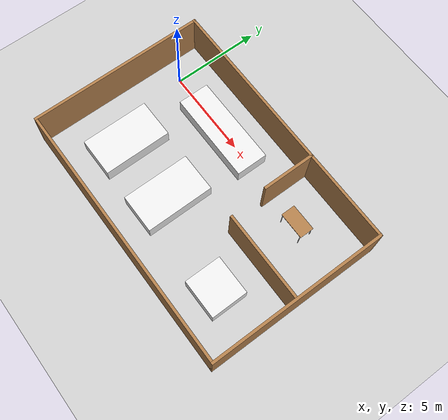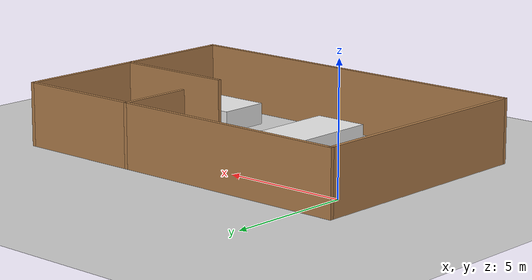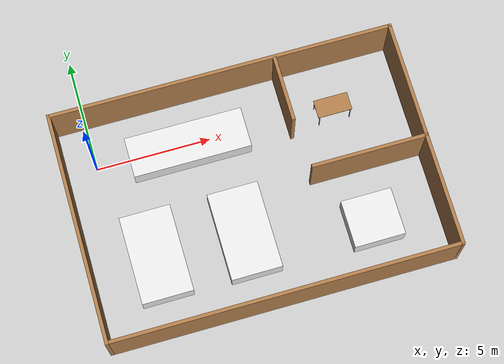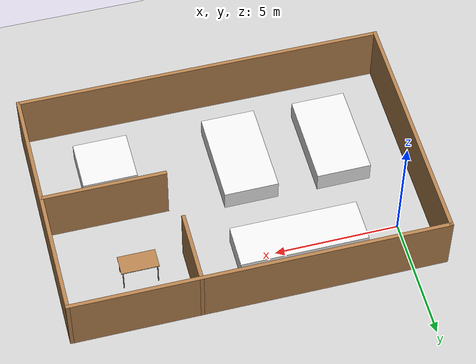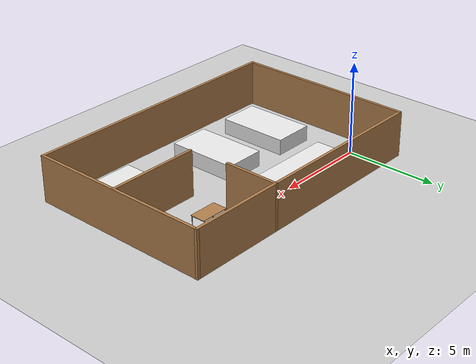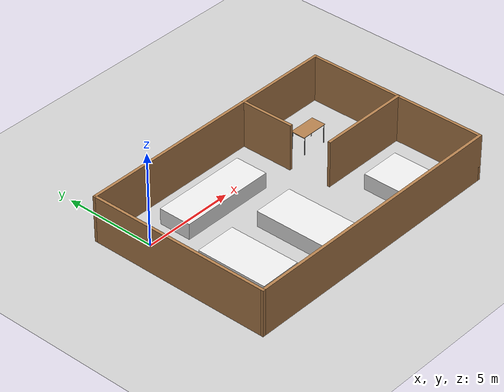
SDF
<sdf version="1.7">
 <world name="default">
  <light name="sun" type="directional">
   <pose>0 0 10 0 -0 0</pose>
   <diffuse>0.8 0.8 0.8 1</diffuse>
   <specular>0.2 0.2 0.2 1</specular>
   <attenuation>
    <range>1000</range>
    <constant>0.9</constant>
    <linear>0.01</linear>
    <quadratic>0.001</quadratic>
   </attenuation>
   <direction>-0.5 0.1 -0.9</direction>
   <spot><inner_angle>0</inner_angle><outer_angle>0</outer_angle><falloff>0</falloff></spot>
  </light>
  <model name="ground_plane">
   <static>1</static>
   <link name="link">
    <collision name="collision">
     <geometry><plane><normal>0 0 1</normal><size>100 100</size></plane></geometry>
     <surface>
      <contact><collide_bitmask>65535</collide_bitmask></contact>
      <friction><ode><mu>100</mu><mu2>50</mu2></ode></friction>
     </surface>
    </collision>
    <visual name="visual">
     <cast_shadows>0</cast_shadows>
     <geometry><plane><normal>0 0 1</normal><size>100 100</size></plane></geometry>
     <material>
      <script><uri>file://media/materials/scripts/gazebo.material</uri><name>Gazebo/Grey</name></script>
     </material>
    </visual>
   </link>
  </model>
  <gravity>0 0 -9.8</gravity>
  <magnetic_field>6e-06 2.3e-05 -4.2e-05</magnetic_field>
  <atmosphere type="adiabatic"/>
  <physics type="ode">
   <max_step_size>0.001</max_step_size>
   <real_time_factor>1</real_time_factor>
   <real_time_update_rate>1000</real_time_update_rate>
  </physics>
  <scene><ambient>0.4 0.4 0.4 1</ambient><background>0.7 0.7 0.7 1</background><shadows>1</shadows></scene>
  <spherical_coordinates>
   <surface_model>EARTH_WGS84</surface_model>
   <latitude_deg>0</latitude_deg>
   <longitude_deg>0</longitude_deg>
   <elevation>0</elevation>
   <heading_deg>0</heading_deg>
  </spherical_coordinates>
  <model name="new_world">
   <pose>8.75403 -2.94266 0 0 -0 0</pose>
   <link name="Wall_12">
    <collision name="Wall_12_Collision">
     <geometry><box><size>3 0.15 2.5</size></box></geometry>
     <pose>0 0 1.25 0 -0 0</pose>
    </collision>
    <visual name="Wall_12_Visual">
     <pose>0 0 1.25 0 -0 0</pose>
     <geometry><box><size>3 0.15 2.5</size></box></geometry>
     <material>
      <script><uri>file://media/materials/scripts/gazebo.material</uri><name>Gazebo/Wood</name></script>
      <ambient>1 1 1 1</ambient>
     </material>
     <meta><layer>0</layer></meta>
    </visual>
    <pose>-0.324419 3.5 0 0 -0 -1.5708</pose>
   </link>
   <link name="Wall_3">
    <collision name="Wall_3_Collision">
     <geometry><box><size>10 0.15 2.5</size></box></geometry>
     <pose>0 0 1.25 0 -0 0</pose>
    </collision>
    <visual name="Wall_3_Visual">
     <pose>0 0 1.25 0 -0 0</pose>
     <geometry><box><size>10 0.15 2.5</size></box></geometry>
     <material>
      <script><uri>file://media/materials/scripts/gazebo.material</uri><name>Gazebo/Wood</name></script>
      <ambient>1 1 1 1</ambient>
     </material>
     <meta><layer>0</layer></meta>
    </visual>
    <pose>-10.0855 0 0 0 -0 -1.5708</pose>
   </link>
   <link name="Wall_4">
    <collision name="Wall_4_Collision">
     <geometry><box><size>15 0.15 2.5</size></box></geometry>
     <pose>0 0 1.25 0 -0 0</pose>
    </collision>
    <visual name="Wall_4_Visual">
     <pose>0 0 1.25 0 -0 0</pose>
     <geometry><box><size>15 0.15 2.5</size></box></geometry>
     <material>
      <script><uri>file://media/materials/scripts/gazebo.material</uri><name>Gazebo/Wood</name></script>
      <ambient>1 1 1 1</ambient>
     </material>
     <meta><layer>0</layer></meta>
    </visual>
    <pose>-2.66053 -4.925 0 0 -0 0</pose>
   </link>
   <link name="Wall_5">
    <collision name="Wall_5_Collision">
     <geometry><box><size>10 0.15 2.5</size></box></geometry>
     <pose>0 0 1.25 0 -0 0</pose>
    </collision>
    <visual name="Wall_5_Visual">
     <pose>0 0 1.25 0 -0 0</pose>
     <geometry><box><size>10 0.15 2.5</size></box></geometry>
     <material>
      <script><uri>file://media/materials/scripts/gazebo.material</uri><name>Gazebo/Wood</name></script>
      <ambient>1 1 1 1</ambient>
     </material>
     <meta><layer>0</layer></meta>
    </visual>
    <pose>4.76447 0 0 0 -0 1.5708</pose>
   </link>
   <link name="Wall_6">
    <collision name="Wall_6_Collision">
     <geometry><box><size>15 0.15 2.5</size></box></geometry>
     <pose>0 0 1.25 0 -0 0</pose>
    </collision>
    <visual name="Wall_6_Visual">
     <pose>0 0 1.25 0 -0 0</pose>
     <geometry><box><size>15 0.15 2.5</size></box></geometry>
     <material>
      <script><uri>file://media/materials/scripts/gazebo.material</uri><name>Gazebo/Wood</name></script>
      <ambient>1 1 1 1</ambient>
     </material>
     <meta><layer>0</layer></meta>
    </visual>
    <pose>-2.66053 4.925 0 0 -0 3.14159</pose>
   </link>
   <link name="Wall_9">
    <collision name="Wall_9_Collision">
     <geometry><box><size>5 0.15 2.5</size></box></geometry>
     <pose>0 0 1.25 0 -0 0</pose>
    </collision>
    <visual name="Wall_9_Visual">
     <pose>0 0 1.25 0 -0 0</pose>
     <geometry><box><size>5 0.15 2.5</size></box></geometry>
     <material>
      <script><uri>file://media/materials/scripts/gazebo.material</uri><name>Gazebo/Wood</name></script>
      <ambient>1 1 1 1</ambient>
     </material>
     <meta><layer>0</layer></meta>
    </visual>
    <pose>2.31618 -0.140603 0 0 -0 3.14159</pose>
   </link>
   <static>1</static>
  </model>
  <model name="table">
   <static>1</static>
   <link name="link">
    <collision name="surface">
     <pose>0 0 1 0 -0 0</pose>
     <geometry><box><size>1.5 0.8 0.03</size></box></geometry>
     <surface><friction><ode><mu>0.6</mu><mu2>0.6</mu2></ode></friction></surface>
    </collision>
    <visual name="visual1">
     <pose>0 0 1 0 -0 0</pose>
     <geometry><box><size>1.5 0.8 0.03</size></box></geometry>
     <material>
      <script><uri>file://media/materials/scripts/gazebo.material</uri><name>Gazebo/Wood</name></script>
     </material>
    </visual>
    <collision name="front_left_leg">
     <pose>0.68 0.38 0.5 0 -0 0</pose>
     <geometry><cylinder><radius>0.02</radius><length>1</length></cylinder></geometry>
    </collision>
    <visual name="front_left_leg">
     <pose>0.68 0.38 0.5 0 -0 0</pose>
     <geometry><cylinder><radius>0.02</radius><length>1</length></cylinder></geometry>
     <material>
      <script><uri>file://media/materials/scripts/gazebo.material</uri><name>Gazebo/Grey</name></script>
     </material>
    </visual>
    <collision name="front_right_leg">
     <pose>0.68 -0.38 0.5 0 -0 0</pose>
     <geometry><cylinder><radius>0.02</radius><length>1</length></cylinder></geometry>
    </collision>
    <visual name="front_right_leg">
     <pose>0.68 -0.38 0.5 0 -0 0</pose>
     <geometry><cylinder><radius>0.02</radius><length>1</length></cylinder></geometry>
     <material>
      <script><uri>file://media/materials/scripts/gazebo.material</uri><name>Gazebo/Grey</name></script>
     </material>
    </visual>
    <collision name="back_right_leg">
     <pose>-0.68 -0.38 0.5 0 -0 0</pose>
     <geometry><cylinder><radius>0.02</radius><length>1</length></cylinder></geometry>
    </collision>
    <visual name="back_right_leg">
     <pose>-0.68 -0.38 0.5 0 -0 0</pose>
     <geometry><cylinder><radius>0.02</radius><length>1</length></cylinder></geometry>
     <material>
      <script><uri>file://media/materials/scripts/gazebo.material</uri><name>Gazebo/Grey</name></script>
     </material>
    </visual>
    <collision name="back_left_leg">
     <pose>-0.68 0.38 0.5 0 -0 0</pose>
     <geometry><cylinder><radius>0.02</radius><length>1</length></cylinder></geometry>
    </collision>
    <visual name="back_left_leg">
     <pose>-0.68 0.38 0.5 0 -0 0</pose>
     <geometry><cylinder><radius>0.02</radius><length>1</length></cylinder></geometry>
     <material>
      <script><uri>file://media/materials/scripts/gazebo.material</uri><name>Gazebo/Grey</name></script>
     </material>
    </visual>
   </link>
   <pose>10.3968 -0.283021 0 0 -0 0</pose>
  </model>
  <model name="unit_box">
   <pose>4.01871 -0.135677 0.426479 2e-06 -0 -1.6e-05</pose>
   <link name="link">
    <inertial>
     <mass>1</mass>
     <inertia>
      <ixx>0.166667</ixx>
      <ixy>0</ixy>
      <ixz>0</ixz>
      <iyy>0.166667</iyy>
      <iyz>0</iyz>
      <izz>0.166667</izz>
     </inertia>
    </inertial>
    <collision name="collision"><geometry><box><size>5.14722 1.77178 0.852957</size></box></geometry></collision>
    <visual name="visual">
     <geometry><box><size>5.14722 1.77178 0.852957</size></box></geometry>
     <material>
      <script><name>Gazebo/White</name><uri>file://media/materials/scripts/gazebo.material</uri></script>
     </material>
    </visual>
   </link>
  </model>
  <model name="unit_box_clone">
   <pose>1.47334 -4.49393 0.426474 -4e-06 -0 -1.56689</pose>
   <link name="link">
    <inertial>
     <mass>1</mass>
     <inertia>
      <ixx>0.166667</ixx>
      <ixy>0</ixy>
      <ixz>0</ixz>
      <iyy>0.166667</iyy>
      <iyz>0</iyz>
      <izz>0.166667</izz>
     </inertia>
    </inertial>
    <collision name="collision"><geometry><box><size>3.8246 2.20154 0.852957</size></box></geometry></collision>
    <visual name="visual">
     <geometry><box><size>3.8246 2.20154 0.852957</size></box></geometry>
     <material>
      <script><name>Gazebo/White</name><uri>file://media/materials/scripts/gazebo.material</uri></script>
     </material>
    </visual>
   </link>
  </model>
  <model name="unit_box_clone_clone">
   <pose>5.28126 -4.52845 0.426465 -1.2e-05 0 -1.56671</pose>
   <link name="link">
    <inertial>
     <mass>1</mass>
     <inertia>
      <ixx>0.166667</ixx>
      <ixy>0</ixy>
      <ixz>0</ixz>
      <iyy>0.166667</iyy>
      <iyz>0</iyz>
      <izz>0.166667</izz>
     </inertia>
    </inertial>
    <collision name="collision"><geometry><box><size>3.8246 2.20154 0.852957</size></box></geometry></collision>
    <visual name="visual">
     <geometry><box><size>3.8246 2.20154 0.852957</size></box></geometry>
     <material>
      <script><name>Gazebo/White</name><uri>file://media/materials/scripts/gazebo.material</uri></script>
     </material>
    </visual>
   </link>
  </model>
  <model name="unit_box_clone_clone_clone">
   <pose>10.6033 -5.46495 0.426441 3.4e-05 -0 -1.56688</pose>
   <link name="link">
    <inertial>
     <mass>1</mass>
     <inertia>
      <ixx>0.166667</ixx>
      <ixy>0</ixy>
      <ixz>0</ixz>
      <iyy>0.166667</iyy>
      <iyz>0</iyz>
      <izz>0.166667</izz>
     </inertia>
    </inertial>
    <collision name="collision"><geometry><box><size>2.06687 2.20154 0.852957</size></box></geometry></collision>
    <visual name="visual">
     <geometry><box><size>2.06687 2.20154 0.852957</size></box></geometry>
     <material>
      <script><name>Gazebo/White</name><uri>file://media/materials/scripts/gazebo.material</uri></script>
     </material>
    </visual>
   </link>
  </model>
 </world>
</sdf>
